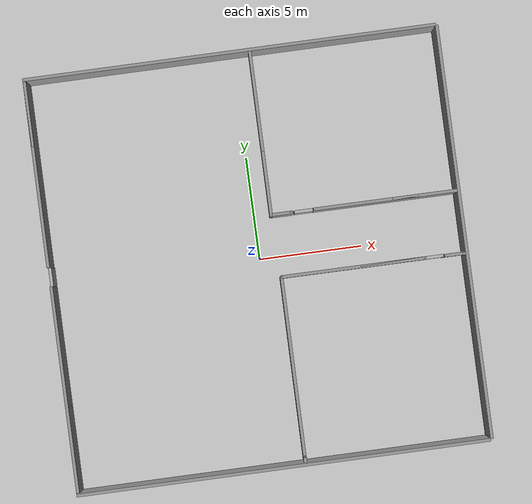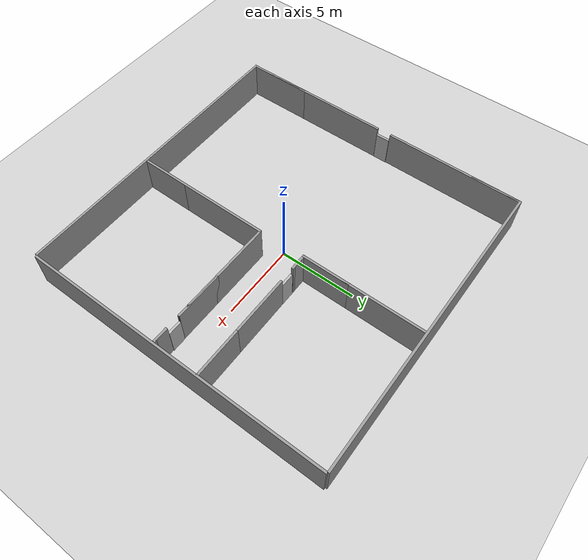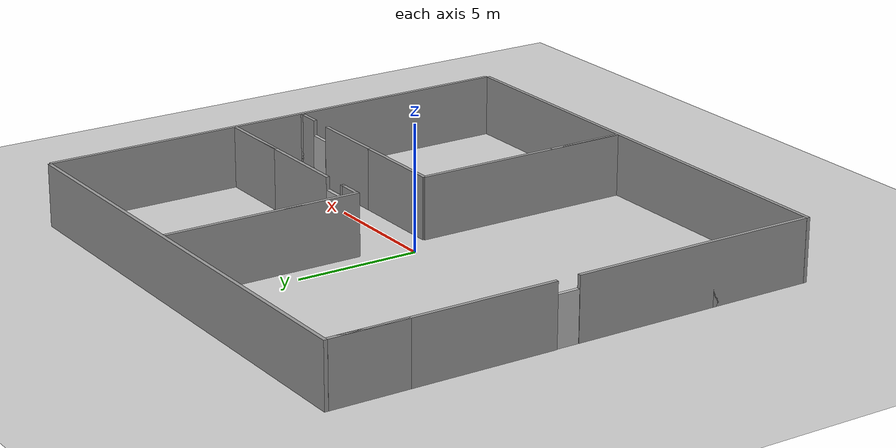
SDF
<sdf version="1.7">
 <world name="default">
  <light name="sun" type="directional">
   <pose>0 0 10 0 -0 0</pose>
   <diffuse>0.8 0.8 0.8 1</diffuse>
   <specular>0.2 0.2 0.2 1</specular>
   <attenuation>
    <range>1000</range>
    <constant>0.9</constant>
    <linear>0.01</linear>
    <quadratic>0.001</quadratic>
   </attenuation>
   <direction>-0.5 0.1 -0.9</direction>
   <spot><inner_angle>0</inner_angle><outer_angle>0</outer_angle><falloff>0</falloff></spot>
  </light>
  <model name="ground_plane">
   <static>1</static>
   <link name="link">
    <collision name="collision">
     <geometry><plane><normal>0 0 1</normal><size>100 100</size></plane></geometry>
     <surface>
      <contact><collide_bitmask>65535</collide_bitmask></contact>
      <friction><ode><mu>100</mu><mu2>50</mu2></ode></friction>
     </surface>
    </collision>
    <visual name="visual">
     <cast_shadows>0</cast_shadows>
     <geometry><plane><normal>0 0 1</normal><size>100 100</size></plane></geometry>
     <material>
      <script><uri>file://media/materials/scripts/gazebo.material</uri><name>Gazebo/Grey</name></script>
     </material>
    </visual>
   </link>
  </model>
  <gravity>0 0 -9.8</gravity>
  <magnetic_field>6e-06 2.3e-05 -4.2e-05</magnetic_field>
  <atmosphere type="adiabatic"/>
  <physics type="ode">
   <max_step_size>0.001</max_step_size>
   <real_time_factor>1</real_time_factor>
   <real_time_update_rate>1000</real_time_update_rate>
  </physics>
  <scene><ambient>0.4 0.4 0.4 1</ambient><background>0.7 0.7 0.7 1</background><shadows>1</shadows></scene>
  <spherical_coordinates>
   <surface_model>EARTH_WGS84</surface_model>
   <latitude_deg>0</latitude_deg>
   <longitude_deg>0</longitude_deg>
   <elevation>0</elevation>
   <heading_deg>0</heading_deg>
  </spherical_coordinates>
  <model name="wall_20m">
   <pose>10.3668 0.002945 0 0 -0 0</pose>
   <link name="Wall_0">
    <collision name="Wall_0_Collision">
     <geometry><box><size>20 0.15 2.5</size></box></geometry>
     <pose>0 0 1.25 0 -0 0</pose>
    </collision>
    <visual name="Wall_0_Visual">
     <pose>0 0 1.25 0 -0 0</pose>
     <geometry><box><size>20 0.15 2.5</size></box></geometry>
     <material>
      <script><uri>file://media/materials/scripts/gazebo.material</uri><name>Gazebo/Grey</name></script>
      <ambient>1 1 1 1</ambient>
     </material>
     <meta><layer>0</layer></meta>
    </visual>
    <pose>-0.482276 -0 0 0 -0 1.5708</pose>
   </link>
   <static>1</static>
  </model>
  <model name="wall_20m_0">
   <pose>-0.159869 9.52923 0 0 0 -1.56837</pose>
   <link name="Wall_0">
    <collision name="Wall_0_Collision">
     <geometry><box><size>20 0.15 2.5</size></box></geometry>
     <pose>0 0 1.25 0 -0 0</pose>
    </collision>
    <visual name="Wall_0_Visual">
     <pose>0 0 1.25 0 -0 0</pose>
     <geometry><box><size>20 0.15 2.5</size></box></geometry>
     <material>
      <script><uri>file://media/materials/scripts/gazebo.material</uri><name>Gazebo/Grey</name></script>
      <ambient>1 1 1 1</ambient>
     </material>
     <meta><layer>0</layer></meta>
    </visual>
    <pose>-0.482276 -0 0 0 -0 1.5708</pose>
   </link>
   <static>1</static>
  </model>
  <model name="wall_20m_0_clone">
   <pose>-0.174596 -10.5481 0 0 0 -1.56837</pose>
   <link name="Wall_0">
    <collision name="Wall_0_Collision">
     <geometry><box><size>20 0.15 2.5</size></box></geometry>
     <pose>0 0 1.25 0 -0 0</pose>
    </collision>
    <visual name="Wall_0_Visual">
     <pose>0 0 1.25 0 -0 0</pose>
     <geometry><box><size>20 0.15 2.5</size></box></geometry>
     <material>
      <script><uri>file://media/materials/scripts/gazebo.material</uri><name>Gazebo/Grey</name></script>
      <ambient>1 1 1 1</ambient>
     </material>
     <meta><layer>0</layer></meta>
    </visual>
    <pose>-0.482276 -0 0 0 -0 1.5708</pose>
   </link>
   <static>1</static>
  </model>
  <model name="wall_10m">
   <pose>-10.0955 -5.01191 0 0 0 -1.57203</pose>
   <link name="Wall_0">
    <collision name="Wall_0_Collision">
     <geometry><box><size>4.16 0.15 2.5</size></box></geometry>
     <pose>0 0 1.25 0 -0 0</pose>
    </collision>
    <visual name="Wall_0_Visual">
     <pose>0 0 1.25 0 -0 0</pose>
     <geometry><box><size>4.16 0.15 2.5</size></box></geometry>
     <material>
      <script><uri>file://media/materials/scripts/gazebo.material</uri><name>Gazebo/Grey</name></script>
      <ambient>1 1 1 1</ambient>
     </material>
     <meta><layer>0</layer></meta>
    </visual>
    <pose>2.92 0 0 0 -0 0</pose>
   </link>
   <link name="Wall_1">
    <collision name="Wall_1_Collision">
     <geometry><box><size>10 0.15 2.5</size></box></geometry>
     <pose>0 0 1.25 0 -0 0</pose>
    </collision>
    <visual name="Wall_1_Visual">
     <pose>0 0 1.25 0 -0 0</pose>
     <geometry><box><size>10 0.15 2.5</size></box></geometry>
     <material>
      <script><uri>file://media/materials/scripts/gazebo.material</uri><name>Gazebo/Grey</name></script>
      <ambient>1 1 1 1</ambient>
     </material>
     <meta><layer>0</layer></meta>
    </visual>
    <pose>0 0 0 0 -0 3.14159</pose>
   </link>
   <static>1</static>
  </model>
  <model name="door_1">
   <link name="link_0">
    <visual name="visual">
     <pose>0 0 1 0 -0 0</pose>
     <geometry><box><size>0.9 0.15 2</size></box></geometry>
     <material>
      <script>
       <uri>model://door/materials/scripts</uri>
       <uri>model://door/materials/textures</uri>
       <name>door</name>
      </script>
     </material>
    </visual>
    <collision name="collision">
     <pose>0 0 1 0 -0 0</pose>
     <geometry><box><size>0.9 0.15 2</size></box></geometry>
    </collision>
   </link>
   <static>1</static>
   <pose>-10.0824 0.449021 0 0 -0 1.568</pose>
  </model>
  <model name="wall_9m">
   <pose>-10.0971 5.40979 0 0 -0 1.56823</pose>
   <link name="Wall_0">
    <collision name="Wall_0_Collision">
     <geometry><box><size>3.16 0.15 2.5</size></box></geometry>
     <pose>0 0 1.25 0 -0 0</pose>
    </collision>
    <visual name="Wall_0_Visual">
     <pose>0 0 1.25 0 -0 0</pose>
     <geometry><box><size>3.16 0.15 2.5</size></box></geometry>
     <material>
      <script><uri>file://media/materials/scripts/gazebo.material</uri><name>Gazebo/Grey</name></script>
      <ambient>1 1 1 1</ambient>
     </material>
     <meta><layer>0</layer></meta>
    </visual>
    <pose>2.92 0 0 0 -0 0</pose>
   </link>
   <link name="Wall_1">
    <collision name="Wall_1_Collision">
     <geometry><box><size>9 0.15 2.5</size></box></geometry>
     <pose>0 0 1.25 0 -0 0</pose>
    </collision>
    <visual name="Wall_1_Visual">
     <pose>0 0 1.25 0 -0 0</pose>
     <geometry><box><size>9 0.15 2.5</size></box></geometry>
     <material>
      <script><uri>file://media/materials/scripts/gazebo.material</uri><name>Gazebo/Grey</name></script>
      <ambient>1 1 1 1</ambient>
     </material>
     <meta><layer>0</layer></meta>
    </visual>
    <pose>0 0 0 0 -0 3.14159</pose>
   </link>
   <static>1</static>
  </model>
  <model name="wall_9m_1">
   <pose>0.904032 -5.47693 0 0 0 -1.57385</pose>
   <link name="Wall_0">
    <collision name="Wall_0_Collision">
     <geometry><box><size>3.16 0.15 2.5</size></box></geometry>
     <pose>0 0 1.25 0 -0 0</pose>
    </collision>
    <visual name="Wall_0_Visual">
     <pose>0 0 1.25 0 -0 0</pose>
     <geometry><box><size>3.16 0.15 2.5</size></box></geometry>
     <material>
      <script><uri>file://media/materials/scripts/gazebo.material</uri><name>Gazebo/Grey</name></script>
      <ambient>1 1 1 1</ambient>
     </material>
     <meta><layer>0</layer></meta>
    </visual>
    <pose>2.92 0 0 0 -0 0</pose>
   </link>
   <link name="Wall_1">
    <collision name="Wall_1_Collision">
     <geometry><box><size>9 0.15 2.5</size></box></geometry>
     <pose>0 0 1.25 0 -0 0</pose>
    </collision>
    <visual name="Wall_1_Visual">
     <pose>0 0 1.25 0 -0 0</pose>
     <geometry><box><size>9 0.15 2.5</size></box></geometry>
     <material>
      <script><uri>file://media/materials/scripts/gazebo.material</uri><name>Gazebo/Grey</name></script>
      <ambient>1 1 1 1</ambient>
     </material>
     <meta><layer>0</layer></meta>
    </visual>
    <pose>0 0 0 0 -0 3.14159</pose>
   </link>
   <static>1</static>
  </model>
  <model name="wall_8m">
   <pose>0.820516 5.93499 0 0 0 -1.57253</pose>
   <link name="Wall_0">
    <collision name="Wall_0_Collision">
     <geometry><box><size>3.16 0.15 2.5</size></box></geometry>
     <pose>0 0 1.25 0 -0 0</pose>
    </collision>
    <visual name="Wall_0_Visual">
     <pose>0 0 1.25 0 -0 0</pose>
     <geometry><box><size>3.16 0.15 2.5</size></box></geometry>
     <material>
      <script><uri>file://media/materials/scripts/gazebo.material</uri><name>Gazebo/Grey</name></script>
      <ambient>1 1 1 1</ambient>
     </material>
     <meta><layer>0</layer></meta>
    </visual>
    <pose>2.42 0 0 0 -0 0</pose>
   </link>
   <link name="Wall_1">
    <collision name="Wall_1_Collision">
     <geometry><box><size>8 0.15 2.5</size></box></geometry>
     <pose>0 0 1.25 0 -0 0</pose>
    </collision>
    <visual name="Wall_1_Visual">
     <pose>0 0 1.25 0 -0 0</pose>
     <geometry><box><size>8 0.15 2.5</size></box></geometry>
     <material>
      <script><uri>file://media/materials/scripts/gazebo.material</uri><name>Gazebo/Grey</name></script>
      <ambient>1 1 1 1</ambient>
     </material>
     <meta><layer>0</layer></meta>
    </visual>
    <pose>0 0 0 0 -0 3.14159</pose>
   </link>
   <static>1</static>
  </model>
  <model name="door_1_0">
   <link name="link_0">
    <visual name="visual">
     <pose>0 0 1 0 -0 0</pose>
     <geometry><box><size>0.9 0.15 2</size></box></geometry>
     <material>
      <script>
       <uri>model://door/materials/scripts</uri>
       <uri>model://door/materials/textures</uri>
       <name>door</name>
      </script>
     </material>
    </visual>
    <collision name="collision">
     <pose>0 0 1 0 -0 0</pose>
     <geometry><box><size>0.9 0.15 2</size></box></geometry>
    </collision>
   </link>
   <static>1</static>
   <pose>2.39581 2.01305 0.003522 0 -0 0</pose>
  </model>
  <model name="door_1_1">
   <link name="link_0">
    <visual name="visual">
     <pose>0 0 1 0 -0 0</pose>
     <geometry><box><size>0.9 0.15 2</size></box></geometry>
     <material>
      <script>
       <uri>model://door/materials/scripts</uri>
       <uri>model://door/materials/textures</uri>
       <name>door</name>
      </script>
     </material>
    </visual>
    <collision name="collision">
     <pose>0 0 1 0 -0 0</pose>
     <geometry><box><size>0.9 0.15 2</size></box></geometry>
    </collision>
   </link>
   <static>1</static>
   <pose>8.35369 -1.00026 -0.114719 0 -0 0</pose>
  </model>
  <model name="wall_1m">
   <pose>1.36726 2.00733 0 0 -0 0</pose>
   <link name="Wall_0">
    <collision name="Wall_0_Collision">
     <geometry><box><size>0.16 0.15 2.5</size></box></geometry>
     <pose>0 0 1.25 0 -0 0</pose>
    </collision>
    <visual name="Wall_0_Visual">
     <pose>0 0 1.25 0 -0 0</pose>
     <geometry><box><size>0.16 0.15 2.5</size></box></geometry>
     <material>
      <script><uri>file://media/materials/scripts/gazebo.material</uri><name>Gazebo/Grey</name></script>
      <ambient>1 1 1 1</ambient>
     </material>
     <meta><layer>0</layer></meta>
    </visual>
    <pose>0.42 0 0 0 -0 0</pose>
   </link>
   <link name="Wall_1">
    <collision name="Wall_1_Collision">
     <geometry><box><size>1 0.15 2.5</size></box></geometry>
     <pose>0 0 1.25 0 -0 0</pose>
    </collision>
    <visual name="Wall_1_Visual">
     <pose>0 0 1.25 0 -0 0</pose>
     <geometry><box><size>1 0.15 2.5</size></box></geometry>
     <material>
      <script><uri>file://media/materials/scripts/gazebo.material</uri><name>Gazebo/Grey</name></script>
      <ambient>1 1 1 1</ambient>
     </material>
     <meta><layer>0</layer></meta>
    </visual>
    <pose>0 0 0 0 -0 3.14159</pose>
   </link>
   <static>1</static>
  </model>
  <model name="wall_1m_0">
   <pose>9.30672 -1.01779 0 0 -0 0</pose>
   <link name="Wall_0">
    <collision name="Wall_0_Collision">
     <geometry><box><size>0.16 0.15 2.5</size></box></geometry>
     <pose>0 0 1.25 0 -0 0</pose>
    </collision>
    <visual name="Wall_0_Visual">
     <pose>0 0 1.25 0 -0 0</pose>
     <geometry><box><size>0.16 0.15 2.5</size></box></geometry>
     <material>
      <script><uri>file://media/materials/scripts/gazebo.material</uri><name>Gazebo/Grey</name></script>
      <ambient>1 1 1 1</ambient>
     </material>
     <meta><layer>0</layer></meta>
    </visual>
    <pose>0.42 0 0 0 -0 0</pose>
   </link>
   <link name="Wall_1">
    <collision name="Wall_1_Collision">
     <geometry><box><size>1 0.15 2.5</size></box></geometry>
     <pose>0 0 1.25 0 -0 0</pose>
    </collision>
    <visual name="Wall_1_Visual">
     <pose>0 0 1.25 0 -0 0</pose>
     <geometry><box><size>1 0.15 2.5</size></box></geometry>
     <material>
      <script><uri>file://media/materials/scripts/gazebo.material</uri><name>Gazebo/Grey</name></script>
      <ambient>1 1 1 1</ambient>
     </material>
     <meta><layer>0</layer></meta>
    </visual>
    <pose>0 0 0 0 -0 3.14159</pose>
   </link>
   <static>1</static>
  </model>
  <model name="wall_7m">
   <pose>4.40112 -1.00406 0 0 -0 0</pose>
   <link name="Wall_0">
    <collision name="Wall_0_Collision">
     <geometry><box><size>3.16 0.15 2.5</size></box></geometry>
     <pose>0 0 1.25 0 -0 0</pose>
    </collision>
    <visual name="Wall_0_Visual">
     <pose>0 0 1.25 0 -0 0</pose>
     <geometry><box><size>3.16 0.15 2.5</size></box></geometry>
     <material>
      <script><uri>file://media/materials/scripts/gazebo.material</uri><name>Gazebo/Grey</name></script>
      <ambient>1 1 1 1</ambient>
     </material>
     <meta><layer>0</layer></meta>
    </visual>
    <pose>1.92 0 0 0 -0 0</pose>
   </link>
   <link name="Wall_1">
    <collision name="Wall_1_Collision">
     <geometry><box><size>7 0.15 2.5</size></box></geometry>
     <pose>0 0 1.25 0 -0 0</pose>
    </collision>
    <visual name="Wall_1_Visual">
     <pose>0 0 1.25 0 -0 0</pose>
     <geometry><box><size>7 0.15 2.5</size></box></geometry>
     <material>
      <script><uri>file://media/materials/scripts/gazebo.material</uri><name>Gazebo/Grey</name></script>
      <ambient>1 1 1 1</ambient>
     </material>
     <meta><layer>0</layer></meta>
    </visual>
    <pose>0 0 0 0 -0 3.14159</pose>
   </link>
   <static>1</static>
  </model>
  <model name="wall_7m_0">
   <pose>6.35669 2.00921 0 0 -0 0</pose>
   <link name="Wall_0">
    <collision name="Wall_0_Collision">
     <geometry><box><size>3.16 0.15 2.5</size></box></geometry>
     <pose>0 0 1.25 0 -0 0</pose>
    </collision>
    <visual name="Wall_0_Visual">
     <pose>0 0 1.25 0 -0 0</pose>
     <geometry><box><size>3.16 0.15 2.5</size></box></geometry>
     <material>
      <script><uri>file://media/materials/scripts/gazebo.material</uri><name>Gazebo/Grey</name></script>
      <ambient>1 1 1 1</ambient>
     </material>
     <meta><layer>0</layer></meta>
    </visual>
    <pose>1.92 0 0 0 -0 0</pose>
   </link>
   <link name="Wall_1">
    <collision name="Wall_1_Collision">
     <geometry><box><size>7 0.15 2.5</size></box></geometry>
     <pose>0 0 1.25 0 -0 0</pose>
    </collision>
    <visual name="Wall_1_Visual">
     <pose>0 0 1.25 0 -0 0</pose>
     <geometry><box><size>7 0.15 2.5</size></box></geometry>
     <material>
      <script><uri>file://media/materials/scripts/gazebo.material</uri><name>Gazebo/Grey</name></script>
      <ambient>1 1 1 1</ambient>
     </material>
     <meta><layer>0</layer></meta>
    </visual>
    <pose>0 0 0 0 -0 3.14159</pose>
   </link>
   <static>1</static>
  </model>
 </world>
</sdf>
